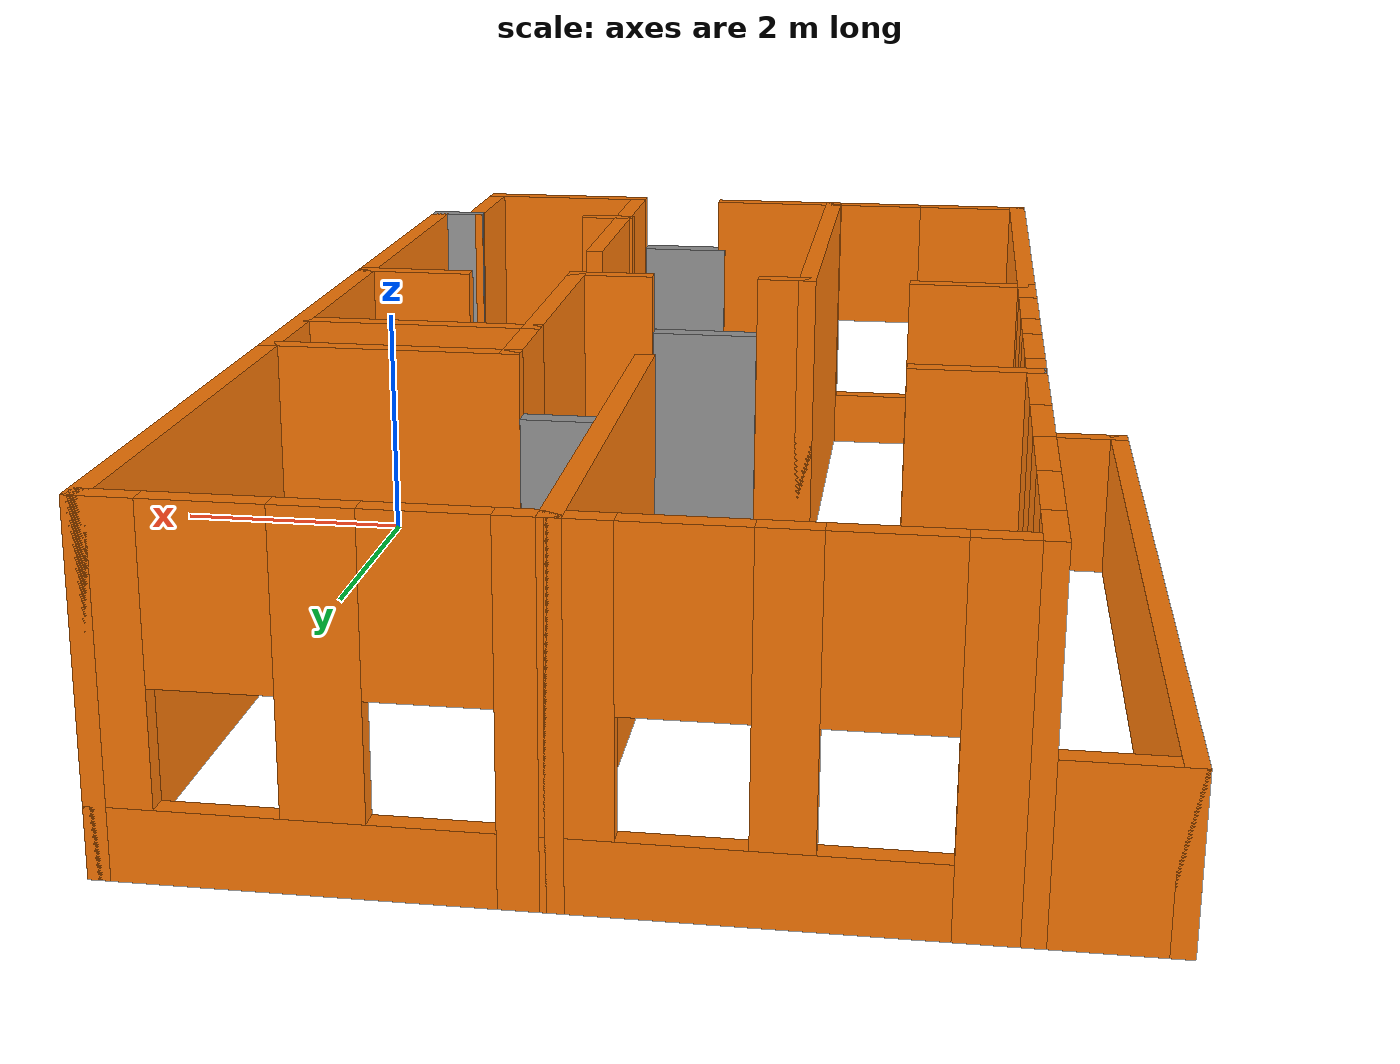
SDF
<?xml version='1.0'?>
<sdf version='1.6'>
  <model name='myhouse'>
    <pose frame=''>-3.16615 1.72187 0 0 -0 0</pose>
    <link name='Door_0'>
      <collision name='Door_0_Collision'>
        <geometry>
          <box>
            <size>0.820199 0.2 2</size>
          </box>
        </geometry>
        <pose frame=''>0 0 1 0 -0 0</pose>
      </collision>
      <visual name='Door_0_Visual'>
        <pose frame=''>0 0 1 0 -0 0</pose>
        <geometry>
          <box>
            <size>0.820199 0.2 2</size>
          </box>
        </geometry>
        <material>
          <script>
            <uri>file://media/materials/scripts/gazebo.material</uri>
            <name>Gazebo/Grey</name>
          </script>
        </material>
      </visual>
      <pose frame=''>0.937182 -5.33098 0 0 -0 0</pose>
    </link>
    <link name='Door_1'>
      <collision name='Door_1_Collision'>
        <geometry>
          <box>
            <size>0.9 0.17 2</size>
          </box>
        </geometry>
        <pose frame=''>0 0 1 0 -0 0</pose>
      </collision>
      <visual name='Door_1_Visual'>
        <pose frame=''>0 0 1 0 -0 0</pose>
        <geometry>
          <box>
            <size>0.9 0.17 2</size>
          </box>
        </geometry>
        <material>
          <script>
            <uri>file://media/materials/scripts/gazebo.material</uri>
            <name>Gazebo/Grey</name>
          </script>
        </material>
      </visual>
      <pose frame=''>0.298777 -1.47395 0 0 -0 0</pose>
    </link>
    <link name='Door_2'>
      <collision name='Door_2_Collision'>
        <geometry>
          <box>
            <size>0.9 0.17 2</size>
          </box>
        </geometry>
        <pose frame=''>0 0 1 0 -0 0</pose>
      </collision>
      <visual name='Door_2_Visual'>
        <pose frame=''>0 0 1 0 -0 0</pose>
        <geometry>
          <box>
            <size>0.9 0.17 2</size>
          </box>
        </geometry>
        <material>
          <script>
            <uri>file://media/materials/scripts/gazebo.material</uri>
            <name>Gazebo/Grey</name>
          </script>
        </material>
      </visual>
      <pose frame=''>1.92139 -1.34095 0 0 0 -3.12589</pose>
    </link>
    <link name='Door_3'>
      <collision name='Door_3_Collision'>
        <geometry>
          <box>
            <size>0.9 0.17 2</size>
          </box>
        </geometry>
        <pose frame=''>0 0 1 0 -0 0</pose>
      </collision>
      <visual name='Door_3_Visual'>
        <pose frame=''>0 0 1 0 -0 0</pose>
        <geometry>
          <box>
            <size>0.9 0.17 2</size>
          </box>
        </geometry>
        <material>
          <script>
            <uri>file://media/materials/scripts/gazebo.material</uri>
            <name>Gazebo/Grey</name>
          </script>
        </material>
      </visual>
      <pose frame=''>1.46919 -1.95275 0 0 -0 1.5833</pose>
    </link>
    <link name='Door_4'>
      <collision name='Door_4_Collision'>
        <geometry>
          <box>
            <size>0.9 0.17 2</size>
          </box>
        </geometry>
        <pose frame=''>0 0 1 0 -0 0</pose>
      </collision>
      <visual name='Door_4_Visual'>
        <pose frame=''>0 0 1 0 -0 0</pose>
        <geometry>
          <box>
            <size>0.9 0.17 2</size>
          </box>
        </geometry>
        <material>
          <script>
            <uri>file://media/materials/scripts/gazebo.material</uri>
            <name>Gazebo/Grey</name>
          </script>
        </material>
      </visual>
      <pose frame=''>0.910582 1.50527 0 0 -0 0</pose>
    </link>
    <link name='Wall_1'>
      <collision name='Wall_1_Collision'>
        <geometry>
          <box>
            <size>7 0.15 1.2</size>
          </box>
        </geometry>
        <pose frame=''>0 0 0.6 0 -0 0</pose>
      </collision>
      <visual name='Wall_1_Visual'>
        <pose frame=''>0 0 0.6 0 -0 0</pose>
        <geometry>
          <box>
            <size>7 0.15 1.2</size>
          </box>
        </geometry>
        <material>
          <script>
            <uri>file://media/materials/scripts/gazebo.material</uri>
            <name>Gazebo/Grey</name>
          </script>
          <ambient>0.996078 0.47451 0.0196078 1</ambient>
        </material>
        <meta>
          <layer>0</layer>
        </meta>
      </visual>
      <pose frame=''>-3.27785 1.94213 0 0 0 -1.5708</pose>
    </link>
    <link name='Wall_10'>
      <pose frame=''>1.84738 5.36737 0 0 -0 0</pose>
      <visual name='Wall_10_Visual_0'>
        <pose frame=''>-1.2952 0 1.25 0 -0 0</pose>
        <geometry>
          <box>
            <size>0.409593 0.15 2.5</size>
          </box>
        </geometry>
        <material>
          <script>
            <uri>file://media/materials/scripts/gazebo.material</uri>
            <name>Gazebo/Grey</name>
          </script>
          <ambient>0.996078 0.47451 0.0196078 1</ambient>
        </material>
        <meta>
          <layer>0</layer>
        </meta>
      </visual>
      <collision name='Wall_10_Collision_0'>
        <geometry>
          <box>
            <size>0.409593 0.15 2.5</size>
          </box>
        </geometry>
        <pose frame=''>-1.2952 0 1.25 0 -0 0</pose>
      </collision>
      <visual name='Wall_10_Visual_1'>
        <pose frame=''>0.204797 0 0.25 0 -0 0</pose>
        <geometry>
          <box>
            <size>2.59041 0.15 0.5</size>
          </box>
        </geometry>
        <material>
          <script>
            <uri>file://media/materials/scripts/gazebo.material</uri>
            <name>Gazebo/Grey</name>
          </script>
          <ambient>0.996078 0.47451 0.0196078 1</ambient>
        </material>
        <meta>
          <layer>0</layer>
        </meta>
      </visual>
      <collision name='Wall_10_Collision_1'>
        <geometry>
          <box>
            <size>2.59041 0.15 0.5</size>
          </box>
        </geometry>
        <pose frame=''>0.204797 0 0.25 0 -0 0</pose>
      </collision>
      <visual name='Wall_10_Visual_2'>
        <pose frame=''>-0.02201 0 1.5 0 -0 0</pose>
        <geometry>
          <box>
            <size>0.536793 0.15 2</size>
          </box>
        </geometry>
        <material>
          <script>
            <uri>file://media/materials/scripts/gazebo.material</uri>
            <name>Gazebo/Grey</name>
          </script>
          <ambient>0.996078 0.47451 0.0196078 1</ambient>
        </material>
        <meta>
          <layer>0</layer>
        </meta>
      </visual>
      <collision name='Wall_10_Collision_2'>
        <geometry>
          <box>
            <size>0.536793 0.15 2</size>
          </box>
        </geometry>
        <pose frame=''>-0.02201 0 1.5 0 -0 0</pose>
      </collision>
      <visual name='Wall_10_Visual_3'>
        <pose frame=''>1.27319 0 1.5 0 -0 0</pose>
        <geometry>
          <box>
            <size>0.453614 0.15 2</size>
          </box>
        </geometry>
        <material>
          <script>
            <uri>file://media/materials/scripts/gazebo.material</uri>
            <name>Gazebo/Grey</name>
          </script>
          <ambient>0.996078 0.47451 0.0196078 1</ambient>
        </material>
        <meta>
          <layer>0</layer>
        </meta>
      </visual>
      <collision name='Wall_10_Collision_3'>
        <geometry>
          <box>
            <size>0.453614 0.15 2</size>
          </box>
        </geometry>
        <pose frame=''>1.27319 0 1.5 0 -0 0</pose>
      </collision>
      <visual name='Wall_10_Visual_4'>
        <pose frame=''>-0.690407 0 1.9 0 -0 0</pose>
        <geometry>
          <box>
            <size>0.8 0.15 1.2</size>
          </box>
        </geometry>
        <material>
          <script>
            <uri>file://media/materials/scripts/gazebo.material</uri>
            <name>Gazebo/Grey</name>
          </script>
          <ambient>0.996078 0.47451 0.0196078 1</ambient>
        </material>
        <meta>
          <layer>0</layer>
        </meta>
      </visual>
      <collision name='Wall_10_Collision_4'>
        <geometry>
          <box>
            <size>0.8 0.15 1.2</size>
          </box>
        </geometry>
        <pose frame=''>-0.690407 0 1.9 0 -0 0</pose>
      </collision>
      <visual name='Wall_10_Visual_5'>
        <pose frame=''>0.646386 0 1.9 0 -0 0</pose>
        <geometry>
          <box>
            <size>0.8 0.15 1.2</size>
          </box>
        </geometry>
        <material>
          <script>
            <uri>file://media/materials/scripts/gazebo.material</uri>
            <name>Gazebo/Grey</name>
          </script>
          <ambient>0.996078 0.47451 0.0196078 1</ambient>
        </material>
        <meta>
          <layer>0</layer>
        </meta>
      </visual>
      <collision name='Wall_10_Collision_5'>
        <geometry>
          <box>
            <size>0.8 0.15 1.2</size>
          </box>
        </geometry>
        <pose frame=''>0.646386 0 1.9 0 -0 0</pose>
      </collision>
    </link>
    <link name='Wall_11'>
      <collision name='Wall_11_Collision'>
        <geometry>
          <box>
            <size>4 0.15 2.5</size>
          </box>
        </geometry>
        <pose frame=''>0 0 1.25 0 -0 0</pose>
      </collision>
      <visual name='Wall_11_Visual'>
        <pose frame=''>0 0 1.25 0 -0 0</pose>
        <geometry>
          <box>
            <size>4 0.15 2.5</size>
          </box>
        </geometry>
        <material>
          <script>
            <uri>file://media/materials/scripts/gazebo.material</uri>
            <name>Gazebo/Grey</name>
          </script>
          <ambient>0.996078 0.47451 0.0196078 1</ambient>
        </material>
        <meta>
          <layer>0</layer>
        </meta>
      </visual>
      <pose frame=''>3.27238 3.44237 0 0 0 -1.5708</pose>
    </link>
    <link name='Wall_12'>
      <collision name='Wall_12_Collision'>
        <geometry>
          <box>
            <size>3 0.15 2.5</size>
          </box>
        </geometry>
        <pose frame=''>0 0 1.25 0 -0 0</pose>
      </collision>
      <visual name='Wall_12_Visual'>
        <pose frame=''>0 0 1.25 0 -0 0</pose>
        <geometry>
          <box>
            <size>3 0.15 2.5</size>
          </box>
        </geometry>
        <material>
          <script>
            <uri>file://media/materials/scripts/gazebo.material</uri>
            <name>Gazebo/Grey</name>
          </script>
          <ambient>0.996078 0.47451 0.0196078 1</ambient>
        </material>
        <meta>
          <layer>0</layer>
        </meta>
      </visual>
      <pose frame=''>3.27238 0.092367 0 0 0 -1.5708</pose>
    </link>
    <link name='Wall_15'>
      <collision name='Wall_15_Collision'>
        <geometry>
          <box>
            <size>4 0.15 2.5</size>
          </box>
        </geometry>
        <pose frame=''>0 0 1.25 0 -0 0</pose>
      </collision>
      <visual name='Wall_15_Visual'>
        <pose frame=''>0 0 1.25 0 -0 0</pose>
        <geometry>
          <box>
            <size>4 0.15 2.5</size>
          </box>
        </geometry>
        <material>
          <script>
            <uri>file://media/materials/scripts/gazebo.material</uri>
            <name>Gazebo/Grey</name>
          </script>
          <ambient>0.996078 0.47451 0.0196078 1</ambient>
        </material>
        <meta>
          <layer>0</layer>
        </meta>
      </visual>
      <pose frame=''>0.422384 3.44237 0 0 0 -1.5708</pose>
    </link>
    <link name='Wall_17'>
      <pose frame=''>-2.42773 3.44225 0 0 0 -1.57073</pose>
      <visual name='Wall_17_Visual_0'>
        <pose frame=''>-1.71028 0 1.25 0 -0 0</pose>
        <geometry>
          <box>
            <size>0.579442 0.15 2.5</size>
          </box>
        </geometry>
        <material>
          <script>
            <uri>file://media/materials/scripts/gazebo.material</uri>
            <name>Gazebo/Grey</name>
          </script>
          <ambient>0.996078 0.47451 0.0196078 1</ambient>
        </material>
        <meta>
          <layer>0</layer>
        </meta>
      </visual>
      <collision name='Wall_17_Collision_0'>
        <geometry>
          <box>
            <size>0.579442 0.15 2.5</size>
          </box>
        </geometry>
        <pose frame=''>-1.71028 0 1.25 0 -0 0</pose>
      </collision>
      <visual name='Wall_17_Visual_1'>
        <pose frame=''>0.289721 0 0.25 0 -0 0</pose>
        <geometry>
          <box>
            <size>3.42056 0.15 0.5</size>
          </box>
        </geometry>
        <material>
          <script>
            <uri>file://media/materials/scripts/gazebo.material</uri>
            <name>Gazebo/Grey</name>
          </script>
          <ambient>0.996078 0.47451 0.0196078 1</ambient>
        </material>
        <meta>
          <layer>0</layer>
        </meta>
      </visual>
      <collision name='Wall_17_Collision_1'>
        <geometry>
          <box>
            <size>3.42056 0.15 0.5</size>
          </box>
        </geometry>
        <pose frame=''>0.289721 0 0.25 0 -0 0</pose>
      </collision>
      <visual name='Wall_17_Visual_2'>
        <pose frame=''>-0.229084 0 1.5 0 -0 0</pose>
        <geometry>
          <box>
            <size>0.782948 0.15 2</size>
          </box>
        </geometry>
        <material>
          <script>
            <uri>file://media/materials/scripts/gazebo.material</uri>
            <name>Gazebo/Grey</name>
          </script>
          <ambient>0.996078 0.47451 0.0196078 1</ambient>
        </material>
        <meta>
          <layer>0</layer>
        </meta>
      </visual>
      <collision name='Wall_17_Collision_2'>
        <geometry>
          <box>
            <size>0.782948 0.15 2</size>
          </box>
        </geometry>
        <pose frame=''>-0.229084 0 1.5 0 -0 0</pose>
      </collision>
      <visual name='Wall_17_Visual_3'>
        <pose frame=''>1.4812 0 1.5 0 -0 0</pose>
        <geometry>
          <box>
            <size>1.03761 0.15 2</size>
          </box>
        </geometry>
        <material>
          <script>
            <uri>file://media/materials/scripts/gazebo.material</uri>
            <name>Gazebo/Grey</name>
          </script>
          <ambient>0.996078 0.47451 0.0196078 1</ambient>
        </material>
        <meta>
          <layer>0</layer>
        </meta>
      </visual>
      <collision name='Wall_17_Collision_3'>
        <geometry>
          <box>
            <size>1.03761 0.15 2</size>
          </box>
        </geometry>
        <pose frame=''>1.4812 0 1.5 0 -0 0</pose>
      </collision>
      <visual name='Wall_17_Visual_4'>
        <pose frame=''>-1.02056 0 1.9 0 -0 0</pose>
        <geometry>
          <box>
            <size>0.8 0.15 1.2</size>
          </box>
        </geometry>
        <material>
          <script>
            <uri>file://media/materials/scripts/gazebo.material</uri>
            <name>Gazebo/Grey</name>
          </script>
          <ambient>0.996078 0.47451 0.0196078 1</ambient>
        </material>
        <meta>
          <layer>0</layer>
        </meta>
      </visual>
      <collision name='Wall_17_Collision_4'>
        <geometry>
          <box>
            <size>0.8 0.15 1.2</size>
          </box>
        </geometry>
        <pose frame=''>-1.02056 0 1.9 0 -0 0</pose>
      </collision>
      <visual name='Wall_17_Visual_5'>
        <pose frame=''>0.562389 0 1.9 0 -0 0</pose>
        <geometry>
          <box>
            <size>0.8 0.15 1.2</size>
          </box>
        </geometry>
        <material>
          <script>
            <uri>file://media/materials/scripts/gazebo.material</uri>
            <name>Gazebo/Grey</name>
          </script>
          <ambient>0.996078 0.47451 0.0196078 1</ambient>
        </material>
        <meta>
          <layer>0</layer>
        </meta>
      </visual>
      <collision name='Wall_17_Collision_5'>
        <geometry>
          <box>
            <size>0.8 0.15 1.2</size>
          </box>
        </geometry>
        <pose frame=''>0.562389 0 1.9 0 -0 0</pose>
      </collision>
    </link>
    <link name='Wall_2'>
      <collision name='Wall_2_Collision'>
        <geometry>
          <box>
            <size>1 0.15 1.2</size>
          </box>
        </geometry>
        <pose frame=''>0 0 0.6 0 -0 0</pose>
      </collision>
      <visual name='Wall_2_Visual'>
        <pose frame=''>0 0 0.6 0 -0 0</pose>
        <geometry>
          <box>
            <size>1 0.15 1.2</size>
          </box>
        </geometry>
        <material>
          <script>
            <uri>file://media/materials/scripts/gazebo.material</uri>
            <name>Gazebo/Grey</name>
          </script>
          <ambient>0.996078 0.47451 0.0196078 1</ambient>
        </material>
        <meta>
          <layer>0</layer>
        </meta>
      </visual>
      <pose frame=''>-2.85285 -1.48287 0 0 -0 0</pose>
    </link>
    <link name='Wall_20'>
      <collision name='Wall_20_Collision'>
        <geometry>
          <box>
            <size>2 0.15 2.5</size>
          </box>
        </geometry>
        <pose frame=''>0 0 1.25 0 -0 0</pose>
      </collision>
      <visual name='Wall_20_Visual'>
        <pose frame=''>0 0 1.25 0 -0 0</pose>
        <geometry>
          <box>
            <size>2 0.15 2.5</size>
          </box>
        </geometry>
        <material>
          <script>
            <uri>file://media/materials/scripts/gazebo.material</uri>
            <name>Gazebo/Grey</name>
          </script>
          <ambient>0.996078 0.47451 0.0196078 1</ambient>
        </material>
        <meta>
          <layer>0</layer>
        </meta>
      </visual>
      <pose frame=''>2.34738 1.51737 0 0 -0 3.14159</pose>
    </link>
    <link name='Wall_22'>
      <collision name='Wall_22_Collision'>
        <geometry>
          <box>
            <size>1 0.15 2.5</size>
          </box>
        </geometry>
        <pose frame=''>0 0 1.25 0 -0 0</pose>
      </collision>
      <visual name='Wall_22_Visual'>
        <pose frame=''>0 0 1.25 0 -0 0</pose>
        <geometry>
          <box>
            <size>1 0.15 2.5</size>
          </box>
        </geometry>
        <material>
          <script>
            <uri>file://media/materials/scripts/gazebo.material</uri>
            <name>Gazebo/Grey</name>
          </script>
          <ambient>0.996078 0.47451 0.0196078 1</ambient>
        </material>
        <meta>
          <layer>0</layer>
        </meta>
      </visual>
      <pose frame=''>1.42238 1.09237 0 0 0 -1.5708</pose>
    </link>
    <link name='Wall_23'>
      <collision name='Wall_23_Collision'>
        <geometry>
          <box>
            <size>2 0.15 2.5</size>
          </box>
        </geometry>
        <pose frame=''>0 0 1.25 0 -0 0</pose>
      </collision>
      <visual name='Wall_23_Visual'>
        <pose frame=''>0 0 1.25 0 -0 0</pose>
        <geometry>
          <box>
            <size>2 0.15 2.5</size>
          </box>
        </geometry>
        <material>
          <script>
            <uri>file://media/materials/scripts/gazebo.material</uri>
            <name>Gazebo/Grey</name>
          </script>
          <ambient>0.996078 0.47451 0.0196078 1</ambient>
        </material>
        <meta>
          <layer>0</layer>
        </meta>
      </visual>
      <pose frame=''>2.34738 0.667367 0 0 -0 0</pose>
    </link>
    <link name='Wall_25'>
      <collision name='Wall_25_Collision'>
        <geometry>
          <box>
            <size>0.15 0.15 2.5</size>
          </box>
        </geometry>
        <pose frame=''>0 0 1.25 0 -0 0</pose>
      </collision>
      <visual name='Wall_25_Visual'>
        <pose frame=''>0 0 1.25 0 -0 0</pose>
        <geometry>
          <box>
            <size>0.15 0.15 2.5</size>
          </box>
        </geometry>
        <material>
          <script>
            <uri>file://media/materials/scripts/gazebo.material</uri>
            <name>Gazebo/Grey</name>
          </script>
          <ambient>1 1 1 1</ambient>
        </material>
        <meta>
          <layer>0</layer>
        </meta>
      </visual>
      <pose frame=''>-2.42762 1.51737 0 0 -0 0</pose>
    </link>
    <link name='Wall_26'>
      <collision name='Wall_26_Collision'>
        <geometry>
          <box>
            <size>1 0.15 2.5</size>
          </box>
        </geometry>
        <pose frame=''>0 0 1.25 0 -0 0</pose>
      </collision>
      <visual name='Wall_26_Visual'>
        <pose frame=''>0 0 1.25 0 -0 0</pose>
        <geometry>
          <box>
            <size>1 0.15 2.5</size>
          </box>
        </geometry>
        <material>
          <script>
            <uri>file://media/materials/scripts/gazebo.material</uri>
            <name>Gazebo/Grey</name>
          </script>
          <ambient>0.996078 0.47451 0.0196078 1</ambient>
        </material>
        <meta>
          <layer>0</layer>
        </meta>
      </visual>
      <pose frame=''>-2.00262 1.51737 0 0 -0 0</pose>
    </link>
    <link name='Wall_28'>
      <pose frame=''>-2.42773 0.01725 0 0 0 -1.57088</pose>
      <visual name='Wall_28_Visual_0'>
        <pose frame=''>-1.34586 0 1.25 0 -0 0</pose>
        <geometry>
          <box>
            <size>0.458272 0.15 2.5</size>
          </box>
        </geometry>
        <material>
          <script>
            <uri>file://media/materials/scripts/gazebo.material</uri>
            <name>Gazebo/Grey</name>
          </script>
          <ambient>0.996078 0.47451 0.0196078 1</ambient>
        </material>
        <meta>
          <layer>0</layer>
        </meta>
      </visual>
      <collision name='Wall_28_Collision_0'>
        <geometry>
          <box>
            <size>0.458272 0.15 2.5</size>
          </box>
        </geometry>
        <pose frame=''>-1.34586 0 1.25 0 -0 0</pose>
      </collision>
      <visual name='Wall_28_Visual_1'>
        <pose frame=''>0.229136 0 0.25 0 -0 0</pose>
        <geometry>
          <box>
            <size>2.69173 0.15 0.5</size>
          </box>
        </geometry>
        <material>
          <script>
            <uri>file://media/materials/scripts/gazebo.material</uri>
            <name>Gazebo/Grey</name>
          </script>
          <ambient>0.996078 0.47451 0.0196078 1</ambient>
        </material>
        <meta>
          <layer>0</layer>
        </meta>
      </visual>
      <collision name='Wall_28_Collision_1'>
        <geometry>
          <box>
            <size>2.69173 0.15 0.5</size>
          </box>
        </geometry>
        <pose frame=''>0.229136 0 0.25 0 -0 0</pose>
      </collision>
      <visual name='Wall_28_Visual_2'>
        <pose frame=''>-0.048279 0 1.5 0 -0 0</pose>
        <geometry>
          <box>
            <size>0.536897 0.15 2</size>
          </box>
        </geometry>
        <material>
          <script>
            <uri>file://media/materials/scripts/gazebo.material</uri>
            <name>Gazebo/Grey</name>
          </script>
          <ambient>0.996078 0.47451 0.0196078 1</ambient>
        </material>
        <meta>
          <layer>0</layer>
        </meta>
      </visual>
      <collision name='Wall_28_Collision_2'>
        <geometry>
          <box>
            <size>0.536897 0.15 2</size>
          </box>
        </geometry>
        <pose frame=''>-0.048279 0 1.5 0 -0 0</pose>
      </collision>
      <visual name='Wall_28_Visual_3'>
        <pose frame=''>1.29758 0 1.5 0 -0 0</pose>
        <geometry>
          <box>
            <size>0.55483 0.15 2</size>
          </box>
        </geometry>
        <material>
          <script>
            <uri>file://media/materials/scripts/gazebo.material</uri>
            <name>Gazebo/Grey</name>
          </script>
          <ambient>0.996078 0.47451 0.0196078 1</ambient>
        </material>
        <meta>
          <layer>0</layer>
        </meta>
      </visual>
      <collision name='Wall_28_Collision_3'>
        <geometry>
          <box>
            <size>0.55483 0.15 2</size>
          </box>
        </geometry>
        <pose frame=''>1.29758 0 1.5 0 -0 0</pose>
      </collision>
      <visual name='Wall_28_Visual_4'>
        <pose frame=''>-0.716728 0 1.9 0 -0 0</pose>
        <geometry>
          <box>
            <size>0.8 0.15 1.2</size>
          </box>
        </geometry>
        <material>
          <script>
            <uri>file://media/materials/scripts/gazebo.material</uri>
            <name>Gazebo/Grey</name>
          </script>
          <ambient>0.996078 0.47451 0.0196078 1</ambient>
        </material>
        <meta>
          <layer>0</layer>
        </meta>
      </visual>
      <collision name='Wall_28_Collision_4'>
        <geometry>
          <box>
            <size>0.8 0.15 1.2</size>
          </box>
        </geometry>
        <pose frame=''>-0.716728 0 1.9 0 -0 0</pose>
      </collision>
      <visual name='Wall_28_Visual_5'>
        <pose frame=''>0.62017 0 1.9 0 -0 0</pose>
        <geometry>
          <box>
            <size>0.8 0.15 1.2</size>
          </box>
        </geometry>
        <material>
          <script>
            <uri>file://media/materials/scripts/gazebo.material</uri>
            <name>Gazebo/Grey</name>
          </script>
          <ambient>0.996078 0.47451 0.0196078 1</ambient>
        </material>
        <meta>
          <layer>0</layer>
        </meta>
      </visual>
      <collision name='Wall_28_Collision_5'>
        <geometry>
          <box>
            <size>0.8 0.15 1.2</size>
          </box>
        </geometry>
        <pose frame=''>0.62017 0 1.9 0 -0 0</pose>
      </collision>
    </link>
    <link name='Wall_3'>
      <collision name='Wall_3_Collision'>
        <geometry>
          <box>
            <size>4 0.15 2.5</size>
          </box>
        </geometry>
        <pose frame=''>0 0 1.25 0 -0 0</pose>
      </collision>
      <visual name='Wall_3_Visual'>
        <pose frame=''>0 0 1.25 0 -0 0</pose>
        <geometry>
          <box>
            <size>4 0.15 2.5</size>
          </box>
        </geometry>
        <material>
          <script>
            <uri>file://media/materials/scripts/gazebo.material</uri>
            <name>Gazebo/Grey</name>
          </script>
          <ambient>0.996078 0.47451 0.0196078 1</ambient>
        </material>
        <meta>
          <layer>0</layer>
        </meta>
      </visual>
      <pose frame=''>-2.42773 -3.40775 0 0 0 -1.57073</pose>
    </link>
    <link name='Wall_30'>
      <collision name='Wall_30_Collision'>
        <geometry>
          <box>
            <size>1.054 0.15 2.5</size>
          </box>
        </geometry>
        <pose frame=''>0 0 1.25 0 -0 0</pose>
      </collision>
      <visual name='Wall_30_Visual'>
        <pose frame=''>0 0 1.25 0 -0 0</pose>
        <geometry>
          <box>
            <size>1.054 0.15 2.5</size>
          </box>
        </geometry>
        <material>
          <script>
            <uri>file://media/materials/scripts/gazebo.material</uri>
            <name>Gazebo/Grey</name>
          </script>
          <ambient>0.996078 0.47451 0.0196078 1</ambient>
        </material>
        <meta>
          <layer>0</layer>
        </meta>
      </visual>
      <pose frame=''>-1.97585 -1.48287 0 0 -0 0</pose>
    </link>
    <link name='Wall_31'>
      <collision name='Wall_31_Collision'>
        <geometry>
          <box>
            <size>4 0.15 1.2</size>
          </box>
        </geometry>
        <pose frame=''>0 0 0.6 0 -0 0</pose>
      </collision>
      <visual name='Wall_31_Visual'>
        <pose frame=''>0 0 0.6 0 -0 0</pose>
        <geometry>
          <box>
            <size>4 0.15 1.2</size>
          </box>
        </geometry>
        <material>
          <script>
            <uri>file://media/materials/scripts/gazebo.material</uri>
            <name>Gazebo/Grey</name>
          </script>
          <ambient>0.996078 0.47451 0.0196078 1</ambient>
        </material>
        <meta>
          <layer>0</layer>
        </meta>
      </visual>
      <pose frame=''>-1.52385 -3.40787 0 0 0 -1.5708</pose>
    </link>
    <link name='Wall_33'>
      <collision name='Wall_33_Collision'>
        <geometry>
          <box>
            <size>1.25 0.15 2.5</size>
          </box>
        </geometry>
        <pose frame=''>0 0 1.25 0 -0 0</pose>
      </collision>
      <visual name='Wall_33_Visual'>
        <pose frame=''>0 0 1.25 0 -0 0</pose>
        <geometry>
          <box>
            <size>1.25 0.15 2.5</size>
          </box>
        </geometry>
        <material>
          <script>
            <uri>file://media/materials/scripts/gazebo.material</uri>
            <name>Gazebo/Grey</name>
          </script>
          <ambient>0.996078 0.47451 0.0196078 1</ambient>
        </material>
        <meta>
          <layer>0</layer>
        </meta>
      </visual>
      <pose frame=''>-0.027616 -5.33263 0 0 -0 0</pose>
    </link>
    <link name='Wall_35'>
      <collision name='Wall_35_Collision'>
        <geometry>
          <box>
            <size>2.25 0.15 2.5</size>
          </box>
        </geometry>
        <pose frame=''>0 0 1.25 0 -0 0</pose>
      </collision>
      <visual name='Wall_35_Visual'>
        <pose frame=''>0 0 1.25 0 -0 0</pose>
        <geometry>
          <box>
            <size>2.25 0.15 2.5</size>
          </box>
        </geometry>
        <material>
          <script>
            <uri>file://media/materials/scripts/gazebo.material</uri>
            <name>Gazebo/Grey</name>
          </script>
          <ambient>0.996078 0.47451 0.0196078 1</ambient>
        </material>
        <meta>
          <layer>0</layer>
        </meta>
      </visual>
      <pose frame=''>1.42238 -0.382633 0 0 0 -1.5708</pose>
    </link>
    <link name='Wall_37'>
      <collision name='Wall_37_Collision'>
        <geometry>
          <box>
            <size>1 0.15 2.5</size>
          </box>
        </geometry>
        <pose frame=''>0 0 1.25 0 -0 0</pose>
      </collision>
      <visual name='Wall_37_Visual'>
        <pose frame=''>0 0 1.25 0 -0 0</pose>
        <geometry>
          <box>
            <size>1 0.15 2.5</size>
          </box>
        </geometry>
        <material>
          <script>
            <uri>file://media/materials/scripts/gazebo.material</uri>
            <name>Gazebo/Grey</name>
          </script>
          <ambient>0.996078 0.47451 0.0196078 1</ambient>
        </material>
        <meta>
          <layer>0</layer>
        </meta>
      </visual>
      <pose frame=''>2.84738 -1.33263 0 0 -0 3.14159</pose>
    </link>
    <link name='Wall_39'>
      <collision name='Wall_39_Collision'>
        <geometry>
          <box>
            <size>3 0.15 2.5</size>
          </box>
        </geometry>
        <pose frame=''>0 0 1.25 0 -0 0</pose>
      </collision>
      <visual name='Wall_39_Visual'>
        <pose frame=''>0 0 1.25 0 -0 0</pose>
        <geometry>
          <box>
            <size>3 0.15 2.5</size>
          </box>
        </geometry>
        <material>
          <script>
            <uri>file://media/materials/scripts/gazebo.material</uri>
            <name>Gazebo/Grey</name>
          </script>
          <ambient>0.996078 0.47451 0.0196078 1</ambient>
        </material>
        <meta>
          <layer>0</layer>
        </meta>
      </visual>
      <pose frame=''>1.43716 -3.94213 0 0 -0 1.5708</pose>
    </link>
    <link name='Wall_4'>
      <pose frame=''>-1.50262 -5.33263 0 0 -0 0</pose>
      <visual name='Wall_4_Visual_0'>
        <pose frame=''>-0.478334 0 1.25 0 -0 0</pose>
        <geometry>
          <box>
            <size>1.04333 0.15 2.5</size>
          </box>
        </geometry>
        <material>
          <script>
            <uri>file://media/materials/scripts/gazebo.material</uri>
            <name>Gazebo/Grey</name>
          </script>
          <ambient>0.996078 0.47451 0.0196078 1</ambient>
        </material>
        <meta>
          <layer>0</layer>
        </meta>
      </visual>
      <collision name='Wall_4_Collision_0'>
        <geometry>
          <box>
            <size>1.04333 0.15 2.5</size>
          </box>
        </geometry>
        <pose frame=''>-0.478334 0 1.25 0 -0 0</pose>
      </collision>
      <visual name='Wall_4_Visual_1'>
        <pose frame=''>0.521666 0 0.25 0 -0 0</pose>
        <geometry>
          <box>
            <size>0.956669 0.15 0.5</size>
          </box>
        </geometry>
        <material>
          <script>
            <uri>file://media/materials/scripts/gazebo.material</uri>
            <name>Gazebo/Grey</name>
          </script>
          <ambient>0.996078 0.47451 0.0196078 1</ambient>
        </material>
        <meta>
          <layer>0</layer>
        </meta>
      </visual>
      <collision name='Wall_4_Collision_1'>
        <geometry>
          <box>
            <size>0.956669 0.15 0.5</size>
          </box>
        </geometry>
        <pose frame=''>0.521666 0 0.25 0 -0 0</pose>
      </collision>
      <visual name='Wall_4_Visual_2'>
        <pose frame=''>0.921666 0 1.5 0 -0 0</pose>
        <geometry>
          <box>
            <size>0.156669 0.15 2</size>
          </box>
        </geometry>
        <material>
          <script>
            <uri>file://media/materials/scripts/gazebo.material</uri>
            <name>Gazebo/Grey</name>
          </script>
          <ambient>0.996078 0.47451 0.0196078 1</ambient>
        </material>
        <meta>
          <layer>0</layer>
        </meta>
      </visual>
      <collision name='Wall_4_Collision_2'>
        <geometry>
          <box>
            <size>0.156669 0.15 2</size>
          </box>
        </geometry>
        <pose frame=''>0.921666 0 1.5 0 -0 0</pose>
      </collision>
      <visual name='Wall_4_Visual_3'>
        <pose frame=''>0.443331 0 1.9 0 -0 0</pose>
        <geometry>
          <box>
            <size>0.8 0.15 1.2</size>
          </box>
        </geometry>
        <material>
          <script>
            <uri>file://media/materials/scripts/gazebo.material</uri>
            <name>Gazebo/Grey</name>
          </script>
          <ambient>0.996078 0.47451 0.0196078 1</ambient>
        </material>
        <meta>
          <layer>0</layer>
        </meta>
      </visual>
      <collision name='Wall_4_Collision_3'>
        <geometry>
          <box>
            <size>0.8 0.15 1.2</size>
          </box>
        </geometry>
        <pose frame=''>0.443331 0 1.9 0 -0 0</pose>
      </collision>
    </link>
    <link name='Wall_41'>
      <collision name='Wall_41_Collision'>
        <geometry>
          <box>
            <size>3.02709 0.15 2.5</size>
          </box>
        </geometry>
        <pose frame=''>0 0 1.25 0 -0 0</pose>
      </collision>
      <visual name='Wall_41_Visual'>
        <pose frame=''>0 0 1.25 0 -0 0</pose>
        <geometry>
          <box>
            <size>3.02709 0.15 2.5</size>
          </box>
        </geometry>
        <material>
          <script>
            <uri>file://media/materials/scripts/gazebo.material</uri>
            <name>Gazebo/Grey</name>
          </script>
          <ambient>0.996078 0.47451 0.0196078 1</ambient>
        </material>
        <meta>
          <layer>0</layer>
        </meta>
      </visual>
      <pose frame=''>3.27238 -2.77093 0 0 0 -1.5708</pose>
    </link>
    <link name='Wall_44'>
      <collision name='Wall_44_Collision'>
        <geometry>
          <box>
            <size>0.501009 0.15 2.5</size>
          </box>
        </geometry>
        <pose frame=''>0 0 1.25 0 -0 0</pose>
      </collision>
      <visual name='Wall_44_Visual'>
        <pose frame=''>0 0 1.25 0 -0 0</pose>
        <geometry>
          <box>
            <size>0.501009 0.15 2.5</size>
          </box>
        </geometry>
        <material>
          <script>
            <uri>file://media/materials/scripts/gazebo.material</uri>
            <name>Gazebo/Grey</name>
          </script>
          <ambient>1 1 1 1</ambient>
        </material>
        <meta>
          <layer>0</layer>
        </meta>
      </visual>
      <pose frame=''>3.09738 -4.22253 0 0 0 -3.06574</pose>
    </link>
    <link name='Wall_46'>
      <collision name='Wall_46_Collision'>
        <geometry>
          <box>
            <size>1.25 0.15 2.5</size>
          </box>
        </geometry>
        <pose frame=''>0 0 1.25 0 -0 0</pose>
      </collision>
      <visual name='Wall_46_Visual'>
        <pose frame=''>0 0 1.25 0 -0 0</pose>
        <geometry>
          <box>
            <size>1.25 0.15 2.5</size>
          </box>
        </geometry>
        <material>
          <script>
            <uri>file://media/materials/scripts/gazebo.material</uri>
            <name>Gazebo/Grey</name>
          </script>
          <ambient>0.996078 0.47451 0.0196078 1</ambient>
        </material>
        <meta>
          <layer>0</layer>
        </meta>
      </visual>
      <pose frame=''>2.92238 -4.78583 0 0 0 -1.5708</pose>
    </link>
    <link name='Wall_47'>
      <collision name='Wall_47_Collision'>
        <geometry>
          <box>
            <size>1.63555 0.15 2.5</size>
          </box>
        </geometry>
        <pose frame=''>0 0 1.25 0 -0 0</pose>
      </collision>
      <visual name='Wall_47_Visual'>
        <pose frame=''>0 0 1.25 0 -0 0</pose>
        <geometry>
          <box>
            <size>1.63555 0.15 2.5</size>
          </box>
        </geometry>
        <material>
          <script>
            <uri>file://media/materials/scripts/gazebo.material</uri>
            <name>Gazebo/Grey</name>
          </script>
          <ambient>0.996078 0.47451 0.0196078 1</ambient>
        </material>
        <meta>
          <layer>0</layer>
        </meta>
      </visual>
      <pose frame=''>2.17977 -5.36478 0 0 0 -3.13843</pose>
    </link>
    <link name='Wall_49'>
      <collision name='Wall_49_Collision'>
        <geometry>
          <box>
            <size>0.5 0.15 2.5</size>
          </box>
        </geometry>
        <pose frame=''>0 0 1.25 0 -0 0</pose>
      </collision>
      <visual name='Wall_49_Visual'>
        <pose frame=''>0 0 1.25 0 -0 0</pose>
        <geometry>
          <box>
            <size>0.5 0.15 2.5</size>
          </box>
        </geometry>
        <material>
          <script>
            <uri>file://media/materials/scripts/gazebo.material</uri>
            <name>Gazebo/Grey</name>
          </script>
          <ambient>0.996078 0.47451 0.0196078 1</ambient>
        </material>
        <meta>
          <layer>0</layer>
        </meta>
      </visual>
      <pose frame=''>1.59099 -4.24037 0 0 -0 0</pose>
    </link>
    <link name='Wall_5'>
      <collision name='Wall_5_Collision'>
        <geometry>
          <box>
            <size>4 0.15 2.5</size>
          </box>
        </geometry>
        <pose frame=''>0 0 1.25 0 -0 0</pose>
      </collision>
      <visual name='Wall_5_Visual'>
        <pose frame=''>0 0 1.25 0 -0 0</pose>
        <geometry>
          <box>
            <size>4 0.15 2.5</size>
          </box>
        </geometry>
        <material>
          <script>
            <uri>file://media/materials/scripts/gazebo.material</uri>
            <name>Gazebo/Grey</name>
          </script>
          <ambient>0.996078 0.47451 0.0196078 1</ambient>
        </material>
        <meta>
          <layer>0</layer>
        </meta>
      </visual>
      <pose frame=''>-0.577616 -3.40763 0 0 -0 1.5708</pose>
    </link>
    <link name='Wall_51'>
      <collision name='Wall_51_Collision'>
        <geometry>
          <box>
            <size>0.741786 0.15 2.5</size>
          </box>
        </geometry>
        <pose frame=''>0 0 1.25 0 -0 0</pose>
      </collision>
      <visual name='Wall_51_Visual'>
        <pose frame=''>0 0 1.25 0 -0 0</pose>
        <geometry>
          <box>
            <size>0.741786 0.15 2.5</size>
          </box>
        </geometry>
        <material>
          <script>
            <uri>file://media/materials/scripts/gazebo.material</uri>
            <name>Gazebo/Grey</name>
          </script>
          <ambient>0.996078 0.47451 0.0196078 1</ambient>
        </material>
        <meta>
          <layer>0</layer>
        </meta>
      </visual>
      <pose frame=''>1.12658 -1.43999 0 0 -0 0.024871</pose>
    </link>
    <link name='Wall_6'>
      <collision name='Wall_6_Collision'>
        <geometry>
          <box>
            <size>0.5 0.15 2.5</size>
          </box>
        </geometry>
        <pose frame=''>0 0 1.25 0 -0 0</pose>
      </collision>
      <visual name='Wall_6_Visual'>
        <pose frame=''>0 0 1.25 0 -0 0</pose>
        <geometry>
          <box>
            <size>0.5 0.15 2.5</size>
          </box>
        </geometry>
        <material>
          <script>
            <uri>file://media/materials/scripts/gazebo.material</uri>
            <name>Gazebo/Grey</name>
          </script>
          <ambient>0.996078 0.47451 0.0196078 1</ambient>
        </material>
        <meta>
          <layer>0</layer>
        </meta>
      </visual>
      <pose frame=''>-0.402616 -1.48263 0 0 -0 0</pose>
    </link>
    <link name='Wall_8'>
      <collision name='Wall_8_Collision'>
        <geometry>
          <box>
            <size>1 0.15 1.2</size>
          </box>
        </geometry>
        <pose frame=''>0 0 0.6 0 -0 0</pose>
      </collision>
      <visual name='Wall_8_Visual'>
        <pose frame=''>0 0 0.6 0 -0 0</pose>
        <geometry>
          <box>
            <size>1 0.15 1.2</size>
          </box>
        </geometry>
        <material>
          <script>
            <uri>file://media/materials/scripts/gazebo.material</uri>
            <name>Gazebo/Grey</name>
          </script>
          <ambient>0.996078 0.47451 0.0196078 1</ambient>
        </material>
        <meta>
          <layer>0</layer>
        </meta>
      </visual>
      <pose frame=''>-2.85285 5.36713 0 0 -0 0</pose>
    </link>
    <link name='Wall_9'>
      <pose frame=''>-1.00273 5.36725 0 0 -0 8.2e-05</pose>
      <visual name='Wall_9_Visual_0'>
        <pose frame=''>-1.22461 0 1.25 0 -0 0</pose>
        <geometry>
          <box>
            <size>0.550783 0.15 2.5</size>
          </box>
        </geometry>
        <material>
          <script>
            <uri>file://media/materials/scripts/gazebo.material</uri>
            <name>Gazebo/Grey</name>
          </script>
          <ambient>0.996078 0.47451 0.0196078 1</ambient>
        </material>
        <meta>
          <layer>0</layer>
        </meta>
      </visual>
      <collision name='Wall_9_Collision_0'>
        <geometry>
          <box>
            <size>0.550783 0.15 2.5</size>
          </box>
        </geometry>
        <pose frame=''>-1.22461 0 1.25 0 -0 0</pose>
      </collision>
      <visual name='Wall_9_Visual_1'>
        <pose frame=''>0.275391 0 0.25 0 -0 0</pose>
        <geometry>
          <box>
            <size>2.44922 0.15 0.5</size>
          </box>
        </geometry>
        <material>
          <script>
            <uri>file://media/materials/scripts/gazebo.material</uri>
            <name>Gazebo/Grey</name>
          </script>
          <ambient>0.996078 0.47451 0.0196078 1</ambient>
        </material>
        <meta>
          <layer>0</layer>
        </meta>
      </visual>
      <collision name='Wall_9_Collision_1'>
        <geometry>
          <box>
            <size>2.44922 0.15 0.5</size>
          </box>
        </geometry>
        <pose frame=''>0.275391 0 0.25 0 -0 0</pose>
      </collision>
      <visual name='Wall_9_Visual_2'>
        <pose frame=''>0.048871 0 1.5 0 -0 0</pose>
        <geometry>
          <box>
            <size>0.396177 0.15 2</size>
          </box>
        </geometry>
        <material>
          <script>
            <uri>file://media/materials/scripts/gazebo.material</uri>
            <name>Gazebo/Grey</name>
          </script>
          <ambient>0.996078 0.47451 0.0196078 1</ambient>
        </material>
        <meta>
          <layer>0</layer>
        </meta>
      </visual>
      <collision name='Wall_9_Collision_2'>
        <geometry>
          <box>
            <size>0.396177 0.15 2</size>
          </box>
        </geometry>
        <pose frame=''>0.048871 0 1.5 0 -0 0</pose>
      </collision>
      <visual name='Wall_9_Visual_3'>
        <pose frame=''>1.27348 0 1.5 0 -0 0</pose>
        <geometry>
          <box>
            <size>0.45304 0.15 2</size>
          </box>
        </geometry>
        <material>
          <script>
            <uri>file://media/materials/scripts/gazebo.material</uri>
            <name>Gazebo/Grey</name>
          </script>
          <ambient>0.996078 0.47451 0.0196078 1</ambient>
        </material>
        <meta>
          <layer>0</layer>
        </meta>
      </visual>
      <collision name='Wall_9_Collision_3'>
        <geometry>
          <box>
            <size>0.45304 0.15 2</size>
          </box>
        </geometry>
        <pose frame=''>1.27348 0 1.5 0 -0 0</pose>
      </collision>
      <visual name='Wall_9_Visual_4'>
        <pose frame=''>-0.549217 0 1.9 0 -0 0</pose>
        <geometry>
          <box>
            <size>0.8 0.15 1.2</size>
          </box>
        </geometry>
        <material>
          <script>
            <uri>file://media/materials/scripts/gazebo.material</uri>
            <name>Gazebo/Grey</name>
          </script>
          <ambient>0.996078 0.47451 0.0196078 1</ambient>
        </material>
        <meta>
          <layer>0</layer>
        </meta>
      </visual>
      <collision name='Wall_9_Collision_4'>
        <geometry>
          <box>
            <size>0.8 0.15 1.2</size>
          </box>
        </geometry>
        <pose frame=''>-0.549217 0 1.9 0 -0 0</pose>
      </collision>
      <visual name='Wall_9_Visual_5'>
        <pose frame=''>0.64696 0 1.9 0 -0 0</pose>
        <geometry>
          <box>
            <size>0.8 0.15 1.2</size>
          </box>
        </geometry>
        <material>
          <script>
            <uri>file://media/materials/scripts/gazebo.material</uri>
            <name>Gazebo/Grey</name>
          </script>
          <ambient>0.996078 0.47451 0.0196078 1</ambient>
        </material>
        <meta>
          <layer>0</layer>
        </meta>
      </visual>
      <collision name='Wall_9_Collision_5'>
        <geometry>
          <box>
            <size>0.8 0.15 1.2</size>
          </box>
        </geometry>
        <pose frame=''>0.64696 0 1.9 0 -0 0</pose>
      </collision>
    </link>
    <static>1</static>
  </model>
</sdf>
